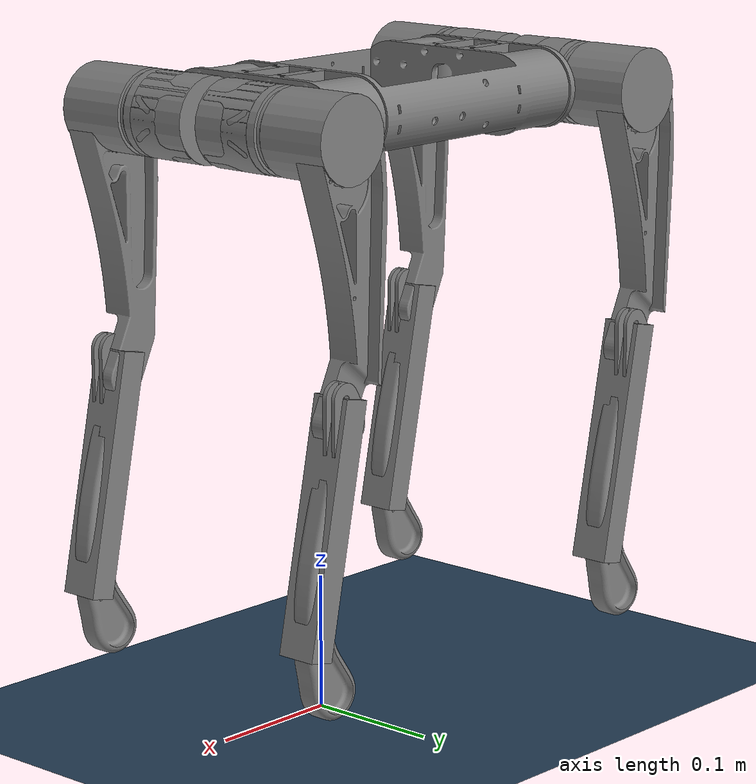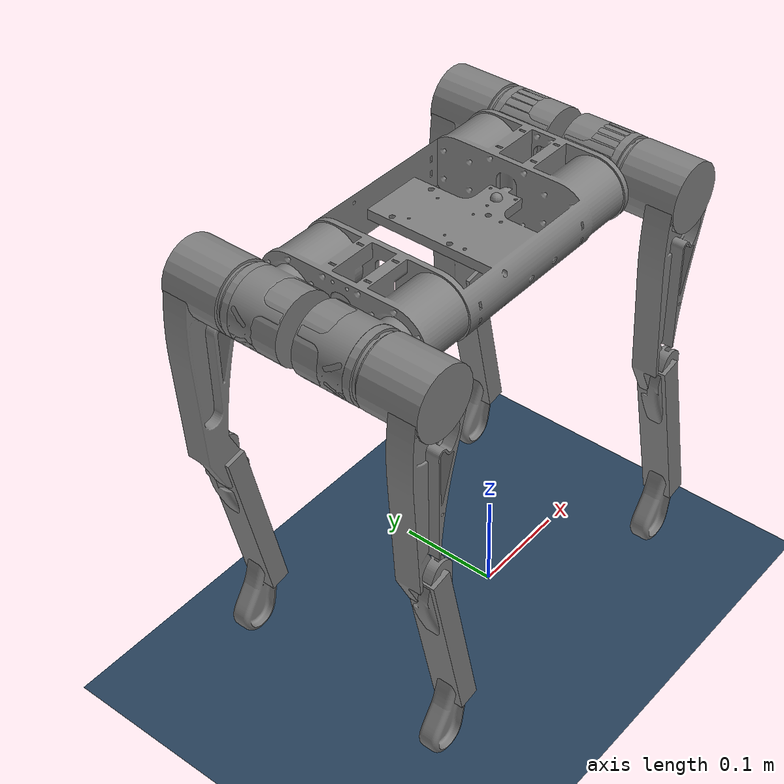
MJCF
<mujoco model="little white scene">
  <include file="little_white.xml"/>

  <statistic center="0 0 0.1" extent="0.8"/>

  <visual>
    <headlight diffuse="0.6 0.6 0.6" ambient="0.3 0.3 0.3" specular="0 0 0"/>
    <rgba haze="0.15 0.25 0.35 1"/>
    <global azimuth="-130" elevation="-20"/>
  </visual>

  <asset>
    <texture type="skybox" builtin="gradient" rgb1="0.3 0.5 0.7" rgb2="0 0 0" width="512" height="3072"/>
    <texture type="2d" name="groundplane" builtin="checker" mark="edge" rgb1="0.2 0.3 0.4" rgb2="0.1 0.2 0.3"
      markrgb="0.8 0.8 0.8" width="300" height="300"/>
    <material name="groundplane" texture="groundplane" texuniform="true" texrepeat="5 5" reflectance="0.2"/>
  </asset>

  <worldbody>
    <light pos="0 0 1.5" dir="0 0 -1" directional="true"/>
    <geom name="floor" size="0 0 0.05" type="plane" material="groundplane"/>

  </worldbody>
</mujoco>

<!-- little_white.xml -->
<mujoco model="simple_little_white">
  <compiler angle="radian" meshdir="meshes"/>

  <default>
    <default class="little_white">
      <geom friction="0.4" margin="0.001" condim="1"/>
      <joint axis="0 1 0" damping="0.1" armature="0.01" frictionloss="0.2"/>
      <motor ctrlrange="-23.7 23.7"/>
      <default class="abduction">
        <joint axis="1 0 0" range="-1.0472 1.0472"/>
      </default>
      <default class="hip">
        <default class="front_hip">
          <joint range="-1.5708 3.4907"/>
        </default>
        <default class="back_hip">
          <joint range="-0.5236 4.5379"/>
        </default>
      </default>
      <default class="knee">
        <joint range="-2.7227 -0.83776"/>
        <motor ctrlrange="-45.43 45.43"/>
      </default>
      <default class="visual">
        <geom type="mesh" contype="0" conaffinity="0" group="2"/>
      </default>
      <default class="collision">
        <geom group="3"/>
        <default class="foot">
          <geom size="0.022" pos="-0.002 0 -0.213" priority="1" condim="3"
            friction="0.4 0.02 0.01"/>
        </default>
      </default>
    </default>
  </default>

  <asset>
    <mesh name="base_link" file="base_link.stl" scale="0.001 0.001 0.001"/>
    <mesh name="fl_hip_1" file="fl_hip_1.stl" scale="0.001 0.001 0.001"/>
    <mesh name="fl_thigh_1" file="fl_thigh_1.stl" scale="0.001 0.001 0.001"/>
    <mesh name="fl_shin_1" file="fl_shin_1.stl" scale="0.001 0.001 0.001"/>
    <mesh name="fr_hip_1" file="fr_hip_1.stl" scale="0.001 0.001 0.001"/>
    <mesh name="fr_thigh_1" file="fr_thigh_1.stl" scale="0.001 0.001 0.001"/>
    <mesh name="fr_shin_1" file="fr_shin_1.stl" scale="0.001 0.001 0.001"/>
    <mesh name="rl_hip_1" file="rl_hip_1.stl" scale="0.001 0.001 0.001"/>
    <mesh name="rl_thigh_1" file="rl_thigh_1.stl" scale="0.001 0.001 0.001"/>
    <mesh name="rl_shin_1" file="rl_shin_1.stl" scale="0.001 0.001 0.001"/>
    <mesh name="rr_hip_1" file="rr_hip_1.stl" scale="0.001 0.001 0.001"/>
    <mesh name="rr_thigh_1" file="rr_thigh_1.stl" scale="0.001 0.001 0.001"/>
    <mesh name="rr_shin_1" file="rr_shin_1.stl" scale="0.001 0.001 0.001"/>
  </asset>

  <worldbody>
    <body name="base_link" pos="0 0 0.445" childclass="little_white" >
      <inertial pos="-0.0582 -0.000155 -0.00093" quat="1 0 0 0"
        mass="6.512"
        diaginertia="0.057419 0.018427 0.07308" />
      <freejoint />
      <geom type="mesh" contype="0" conaffinity="0" group="1" density="0" mesh="base_link"/>
      <geom size="0.1275 0.0825 0.03" pos="-0.06 0 0" type="box" class="collision"/>
      <site name="imu" pos="0 0 0" />
      <body name="FL_hip" pos="0.0628 0.051 0">
        <inertial pos="0.0350899 -0.0133593 -4.81638e-05" quat="0.593515 0.593515 0.384369 0.384369" mass="1.18804" diaginertia="0.00058531 0.000581 0.00052369"/>
        <joint name="FL_hip_joint" class="abduction"/>
        <geom pos="-0.062848 -0.050963 0.001091" quat="1 0 0 0" type="mesh" contype="0" conaffinity="0" group="1" density="0" mesh="fl_hip_1"/>
        <geom size="0.031 0.0275" pos="0.0365 -0.016 0" quat="0.707388 0.706825 0 0" type="cylinder"/>
        <body name="FL_thigh" pos="0.0365 0.014537 0">
          <inertial pos="-0.00450844 0.0304149 -0.038283" quat="0.789513 0.0698884 0.00312688 0.609733" mass="1.52587" diaginertia="0.00621139 0.00610151 0.0005991"/>
          <joint name="FL_thigh_joint" class="front_hip"/>
          <geom pos="-0.099348 -0.0655 0.001201" quat="1 0 0 0" type="mesh" contype="0" conaffinity="0" group="1" density="0" mesh="fl_thigh_1"/>
          <geom size="0.031 0.0275" pos="0 0.03 0" quat="0.707388 0.706825 0 0" type="cylinder"/>
          <geom size="0.01 0.015 0.075" pos="-0.025 0.045 -0.08" type="box" class="collision"/>
          <body name="FL_calf" pos="-0.001729 0.042 -0.194">
            <inertial pos="0.0135457 0.00175507 -0.0934921" quat="0.716794 -0.0387092 -0.0252026 0.695754" mass="0.499488" diaginertia="0.00244604 0.00238866 7.83068e-05"/>
            <joint name="FL_calf_joint" class="knee"/>
            <geom pos="-0.097619 -0.107944 0.196111" quat="1 0 0 0" type="mesh" contype="0" conaffinity="0" group="1" density="0" mesh="fl_shin_1"/>
            <geom size="0.01 0.015 0.09" pos="0.015 0 -0.07" quat="0.995004 0 -0.0998334 0" type="box"/>
            <geom size="0.02" pos="0.01 0 -0.19" class="collision"/>
          </body>
        </body>
      </body>
      <body name="FR_hip" pos="0.0628 -0.051 0">
        <inertial pos="0.0350893 0.0133589 -0.000102532" quat="0.384369 0.384369 0.593515 0.593515" mass="1.18804" diaginertia="0.00058531 0.000581 0.00052369"/>
        <joint name="FR_hip_joint" class="abduction"/>
        <geom pos="-0.062849 0.051037 0.000872" quat="1 0 0 0" type="mesh" contype="0" conaffinity="0" group="1" density="0" mesh="fr_hip_1"/>
        <geom size="0.031 0.0275" pos="0.0365 0.016 0" quat="0.707388 0.706825 0 0" type="cylinder"/>
        <body name="FR_thigh" pos="0.0365 -0.014537 0">
          <inertial pos="-0.00450855 -0.0305795 -0.0381524" quat="0.609907 0.00177383 0.0715233 0.789237" mass="1.52587" diaginertia="0.00621147 0.0061014 0.000599133"/>
          <joint name="FR_thigh_joint" class="front_hip"/>
          <geom pos="-0.099349 0.065574 0.000919" quat="1 0 0 0" type="mesh" contype="0" conaffinity="0" group="1" density="0" mesh="fr_thigh_1"/>
          <geom size="0.031 0.0275" pos="0 -0.03 0" quat="0.707388 0.706825 0 0" type="cylinder"/>
          <geom size="0.01 0.015 0.075" pos="-0.025 -0.045 -0.08" type="box" class="collision"/>
          <body name="FR_calf" pos="-0.001729 -0.042 -0.194">
            <inertial pos="0.0135457 -0.00215681 -0.093483" quat="0.696539 -0.0266443 -0.0372125 0.716057" mass="0.49949" diaginertia="0.00244666 0.00238866 7.86749e-05"/>
            <joint name="FR_calf_joint" class="knee"/>
            <geom pos="-0.09762 0.108855 0.195646" quat="1 0 0 0" type="mesh" contype="0" conaffinity="0" group="1" density="0" mesh="fr_shin_1"/>
            <geom size="0.01 0.015 0.09" pos="0.015 0 -0.07" quat="0.995004 0 -0.0998334 0" type="box"/>
            <geom size="0.02" pos="0.01 0 -0.19" class="collision"/>
          </body>
        </body>
      </body>
      <body name="RL_hip" pos="-0.182151 0.051 0">
        <inertial pos="-0.0350895 -0.0133593 0.000102809" quat="0.384369 0.384369 0.593515 0.593515" mass="1.18804" diaginertia="0.00058531 0.000581 0.00052369"/>
        <joint name="RL_hip_joint" class="abduction"/>
        <geom pos="0.182151 -0.050963 0.000565" quat="1 0 0 0" type="mesh" contype="0" conaffinity="0" group="1" density="0" mesh="rl_hip_1"/>
        <geom size="0.031 0.0275" pos="-0.0365 -0.016 0" quat="0.707388 0.706825 0 0" type="cylinder"/>
        <body name="RL_thigh" pos="-0.0365 0.014537 0">
          <inertial pos="-0.0045087 0.0304149 -0.0382829" quat="0.789513 0.0698884 0.00312688 0.609733" mass="1.52587" diaginertia="0.00621139 0.00610151 0.0005991"/>
          <joint name="RL_thigh_joint" class="back_hip"/>
          <geom pos="0.218651 -0.0655 0.000518" quat="1 0 0 0" type="mesh" contype="0" conaffinity="0" group="1" density="0" mesh="rl_thigh_1"/>
          <geom size="0.031 0.0275" pos="0 0.03 0" quat="0.707388 0.706825 0 0" type="cylinder"/>
          <geom size="0.01 0.015 0.075" pos="-0.025 0.045 -0.08" type="box" class="collision"/>
          <body name="RL_calf" pos="-0.001729 0.042 -0.194">
            <inertial pos="0.0135455 0.00175507 -0.0934921" quat="0.716794 -0.0387092 -0.0252026 0.695754" mass="0.499488" diaginertia="0.00244604 0.00238866 7.83068e-05"/>
            <joint name="RL_calf_joint" class="knee"/>
            <geom pos="0.22038 -0.107944 0.195428" quat="1 0 0 0" type="mesh" contype="0" conaffinity="0" group="1" density="0" mesh="rl_shin_1"/>
            <geom size="0.01 0.015 0.09" pos="0.015 0 -0.07" quat="0.995004 0 -0.0998334 0" type="box"/>
            <geom size="0.02" pos="0.01 0 -0.19" class="collision"/>
          </body>
        </body>
      </body>
      <body name="RR_hip" pos="-0.182151 -0.051 0">
        <inertial pos="-0.0350892 0.0133589 4.84411e-05" quat="0.593515 0.593515 0.384369 0.384369" mass="1.18804" diaginertia="0.00058531 0.000581 0.00052369"/>
        <joint name="RR_hip_joint" class="abduction"/>
        <geom pos="0.182151 0.051037 0.000346" quat="1 0 0 0" type="mesh" contype="0" conaffinity="0" group="1" density="0" mesh="rr_hip_1"/>
        <geom size="0.031 0.0275" pos="-0.0365 0.016 0" quat="0.707388 0.706825 0 0" type="cylinder"/>
        <body name="RR_thigh" pos="-0.0365 -0.014537 0">
          <inertial pos="-0.00450882 -0.0305795 -0.0381524" quat="0.609907 0.00177383 0.0715233 0.789237" mass="1.52587" diaginertia="0.00621147 0.0061014 0.000599133"/>
          <joint name="RR_thigh_joint" class="back_hip"/>
          <geom pos="0.21865 0.065574 0.000236" quat="1 0 0 0" type="mesh" contype="0" conaffinity="0" group="1" density="0" mesh="rr_thigh_1"/>
          <geom size="0.031 0.0275" pos="0 -0.03 0" quat="0.707388 0.706825 0 0" type="cylinder"/>
          <geom size="0.01 0.015 0.075" pos="-0.025 -0.045 -0.08" type="box" class="collision"/>
          <body name="RR_calf" pos="-0.001729 -0.042 -0.194">
            <inertial pos="0.0135455 -0.00215681 -0.093484" quat="0.696539 -0.0266443 -0.0372125 0.716057" mass="0.49949" diaginertia="0.00244666 0.00238866 7.86749e-05"/>
            <joint name="RR_calf_joint" class="knee"/>
            <geom pos="0.220379 0.108855 0.194962" quat="1 0 0 0" type="mesh" contype="0" conaffinity="0" group="1" density="0" mesh="rr_shin_1"/>
            <geom size="0.01 0.015 0.09" pos="0.015 0 -0.07" quat="0.995004 0 -0.0998334 0" type="box"/>
            <geom size="0.02" pos="0.01 0 -0.19" class="collision"/>
          </body>
        </body>
      </body>
    </body>
  </worldbody>

  <actuator>
    <motor class="abduction" name="FL_hip" joint="FL_hip_joint" />
    <motor class="hip" name="FL_thigh" joint="FL_thigh_joint" />
    <motor class="knee" name="FL_calf" joint="FL_calf_joint" />
    <motor class="abduction" name="FR_hip" joint="FR_hip_joint" />
    <motor class="hip" name="FR_thigh" joint="FR_thigh_joint" />
    <motor class="knee" name="FR_calf" joint="FR_calf_joint" />
    <motor class="abduction" name="RR_hip" joint="RR_hip_joint" />
    <motor class="hip" name="RR_thigh" joint="RR_thigh_joint" />
    <motor class="knee" name="RR_calf" joint="RR_calf_joint" />
    <motor class="abduction" name="RL_hip" joint="RL_hip_joint" />
    <motor class="hip" name="RL_thigh" joint="RL_thigh_joint" />
    <motor class="knee" name="RL_calf" joint="RL_calf_joint" />
  </actuator>

  <sensor>
    <jointpos name="FL_hip_pos" joint="FL_hip_joint" />
    <jointpos name="FL_thigh_pos" joint="FL_thigh_joint" />
    <jointpos name="FL_calf_pos" joint="FL_calf_joint" />
    <jointpos name="FR_hip_pos" joint="FR_hip_joint" />
    <jointpos name="FR_thigh_pos" joint="FR_thigh_joint" />
    <jointpos name="FR_calf_pos" joint="FR_calf_joint" />
    <jointpos name="RR_hip_pos" joint="RR_hip_joint" />
    <jointpos name="RR_thigh_pos" joint="RR_thigh_joint" />
    <jointpos name="RR_calf_pos" joint="RR_calf_joint" />
    <jointpos name="RL_hip_pos" joint="RL_hip_joint" />
    <jointpos name="RL_thigh_pos" joint="RL_thigh_joint" />
    <jointpos name="RL_calf_pos" joint="RL_calf_joint" />

    <jointvel name="FL_hip_vel" joint="FL_hip_joint" />
    <jointvel name="FL_thigh_vel" joint="FL_thigh_joint" />
    <jointvel name="FL_calf_vel" joint="FL_calf_joint" />
    <jointvel name="FR_hip_vel" joint="FR_hip_joint" />
    <jointvel name="FR_thigh_vel" joint="FR_thigh_joint" />
    <jointvel name="FR_calf_vel" joint="FR_calf_joint" />
    <jointvel name="RR_hip_vel" joint="RR_hip_joint" />
    <jointvel name="RR_thigh_vel" joint="RR_thigh_joint" />
    <jointvel name="RR_calf_vel" joint="RR_calf_joint" />
    <jointvel name="RL_hip_vel" joint="RL_hip_joint" />
    <jointvel name="RL_thigh_vel" joint="RL_thigh_joint" />
    <jointvel name="RL_calf_vel" joint="RL_calf_joint" />

    <jointactuatorfrc name="FL_hip_torque" joint="FL_hip_joint" noise="0.01" />
    <jointactuatorfrc name="FL_thigh_torque" joint="FL_thigh_joint" noise="0.01" />
    <jointactuatorfrc name="FL_calf_torque" joint="FL_calf_joint" noise="0.01" />
    <jointactuatorfrc name="FR_hip_torque" joint="FR_hip_joint" noise="0.01" />
    <jointactuatorfrc name="FR_thigh_torque" joint="FR_thigh_joint" noise="0.01" />
    <jointactuatorfrc name="FR_calf_torque" joint="FR_calf_joint" noise="0.01" />
    <jointactuatorfrc name="RR_hip_torque" joint="RR_hip_joint" noise="0.01" />
    <jointactuatorfrc name="RR_thigh_torque" joint="RR_thigh_joint" noise="0.01" />
    <jointactuatorfrc name="RR_calf_torque" joint="RR_calf_joint" noise="0.01" />
    <jointactuatorfrc name="RL_hip_torque" joint="RL_hip_joint" noise="0.01" />
    <jointactuatorfrc name="RL_thigh_torque" joint="RL_thigh_joint" noise="0.01" />
    <jointactuatorfrc name="RL_calf_torque" joint="RL_calf_joint" noise="0.01" />

    <framequat name="imu_quat" objtype="site" objname="imu" />
    <gyro name="imu_gyro" site="imu" />
    <accelerometer name="imu_acc" site="imu" />

    <framepos name="frame_pos" objtype="site" objname="imu" />
    <framelinvel name="frame_vel" objtype="site" objname="imu" />
  </sensor>

</mujoco>
